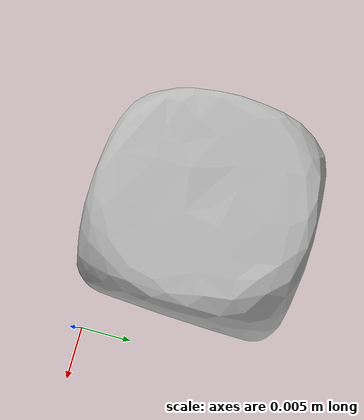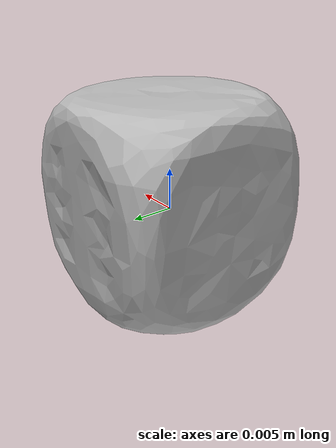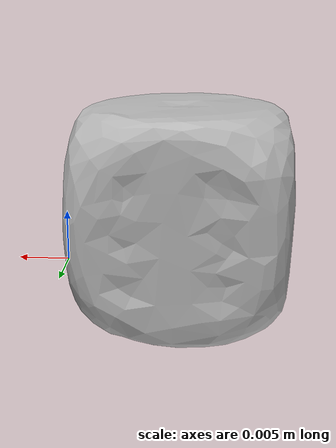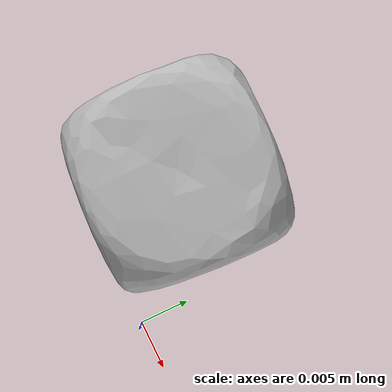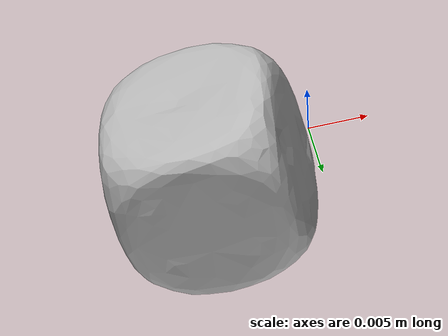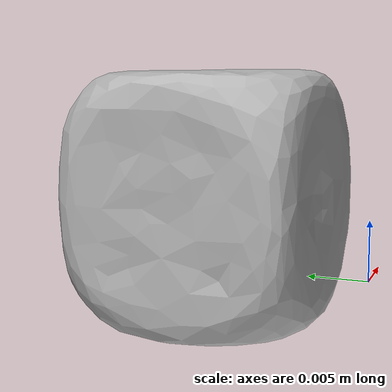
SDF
<?xml version="1.0" ?>
<sdf version="1.4">
  <model name='ycb_062_dice'>
    <link name='body'>
      <inertial>
        <mass>0.0052</mass>
        <pose>-0.0112073785292 0.00916334297567 0.0084073548052 0 0 0</pose>
        <inertia>
          <ixx>2.26177612783e-07</ixx>
          <ixy>3.28521893826e-10</ixy>
          <ixz>-4.05261860014e-10</ixz>
          <iyy>2.27551133803e-07</iyy>
          <iyz>2.01142240686e-10</iyz>
          <izz>2.14077947933e-07</izz>
        </inertia>
      </inertial>
      <visual name='ycb_062_dice_visual'>
        <pose>0 0 0 0 0 0</pose>
        <geometry>
          <mesh>
            <uri>model://ycb_062_dice/meshes/textured.dae</uri>
          </mesh>
        </geometry>
      </visual>
      <collision name='ycb_062_dice_collision'>
        <pose>0 0 0 0 0 0</pose>
        <geometry>
          <mesh>
            <uri>model://ycb_062_dice/meshes/nontextured.stl</uri>
          </mesh>
        </geometry>
        <max_contacts>10</max_contacts>
        <surface>
          <contact>
            <ode>
              <kp>1e15</kp>
              <kd>1e13</kd>
            </ode>
          </contact>
        </surface>
      </collision>
    </link>
  </model>
</sdf>
